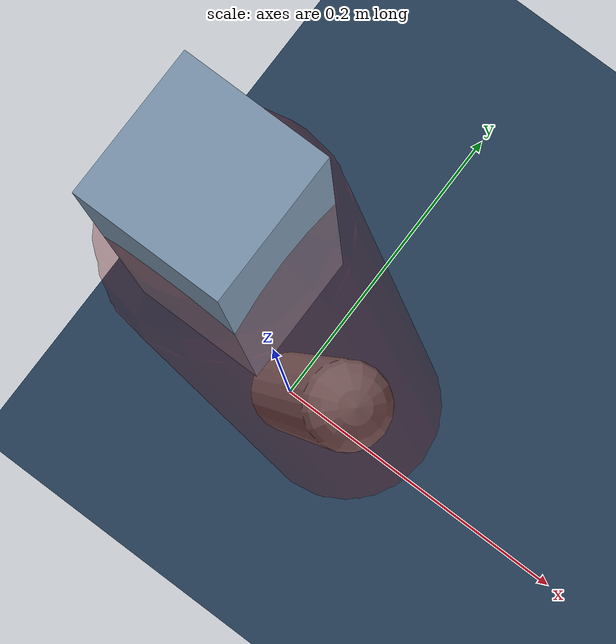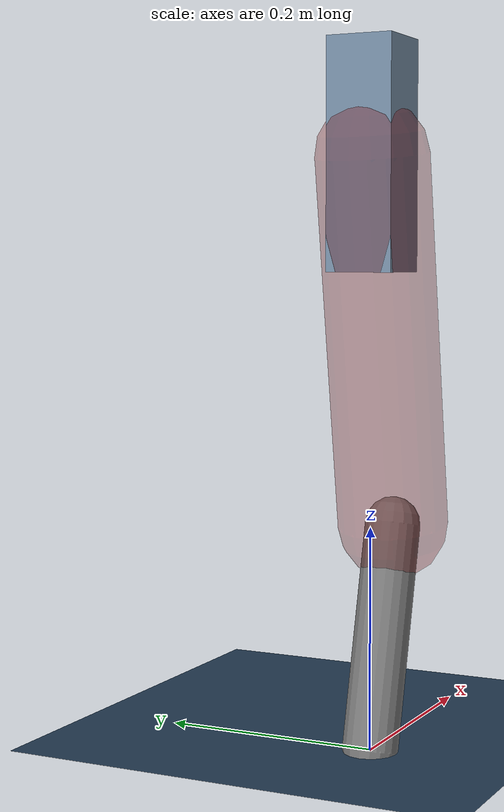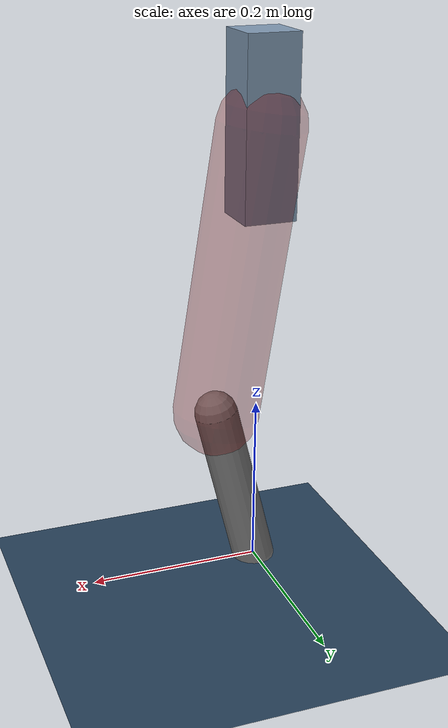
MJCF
<mujoco model="Hopper2D">
	<compiler inertiafromgeom="true" angle="radian" />
	<option timestep="0.001" integrator="implicit" cone="elliptic" solver="Newton" tolerance="1e-10" />

	<default>
		<geom contype="1" conaffinity="1" condim="3" friction="2 0.005 0.0001" solref="0.005 1" />
		<joint limited="true" damping="0.1" />
	</default>

	<asset>
		<texture name="skybox" type="skybox" builtin="gradient" rgb1=".4 .6 .8" rgb2="0 0 0" width="800" height="800" />
		<texture name="grid" type="2d" builtin="checker" rgb1=".1 .2 .3" rgb2=".2 .3 .4" width="300" height="300" mark="edge" markrgb=".2 .3 .4" />
		<material name="ground" texture="grid" texrepeat="1 1" texuniform="true" reflectance="0.1" />
		<material name="leg" rgba="0.5 0.6 0.7 1" />
	</asset>

	<worldbody>

		<geom name="floor" type="plane" size="5 5 0.25" material="ground" />

		<light directional="false" diffuse="0.8 0.8 0.8" specular="0.3 0.3 0.3" pos="0 0 2" dir="0 0 -1" />
		<light mode="targetbodycom" target="base" directional="false" diffuse="0.8 0.8 0.8" specular="0.3 0.3 0.3" pos="0 0 2" dir="0 0 -1" />

		<camera name="fixed" pos="0 -2 1" xyaxes="1 0 0 0 0 1" />
		<camera name="tracking" mode="trackcom" pos="0 -3 1" />

		<body name="root" pos="0 0 0.5238123535858037">
			<joint name="slide_x" type="slide" axis="1 0 0" range="-100 100" />
			<joint name="slide_z" type="slide" axis="0 0 1" range="0 10" />

			<body name="base" pos="0 0 0">
				<geom name="torso" type="box" size="0.03 0.03 0.1" mass="2.267" material="leg" />

				<body name="link1" pos="0 0 0" euler="0 1.4196457201734685 0">
					<joint type="hinge" axis="0 -1 0" pos="0 0 0" name="hinge1" limited="true" range="-3.14 3.14" stiffness="0" damping="0.1" />
					<geom name="thigh" type="capsule" fromto="0 0 0 0.3310817842492747 0 0" size="0.05" rgba="0.5 0 0 0.3" mass="1.0738289958979692" />

					<body name="link2" pos="0.3310817842492747 0 0" euler="0 0.3996059818612554 0">
						<joint type="hinge" axis="0 -1 0" pos="0 0 0" name="hinge2" limited="true" range="-3.14 3.14" stiffness="0" damping="0.1" />
						<geom name="shank" type="capsule" fromto="0 0 0 0.20273056933652905 0 0" size="0.025" mass="0.4031844554692232" />

					</body>
				</body>
			</body>
		</body>
	</worldbody>

	<actuator>
		<motor name="torque1" joint="hinge1" ctrlrange="-57.580496998727334 57.580496998727334" ctrllimited="true" gear="1" />
		<motor name="torque2" joint="hinge2" ctrlrange="-107.39371139673482 107.39371139673482" ctrllimited="true" gear="1" />
	</actuator>
</mujoco>
